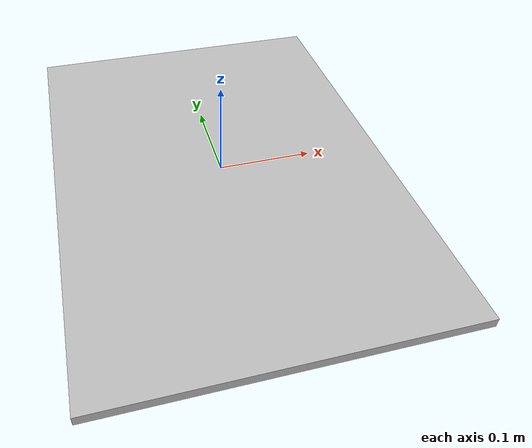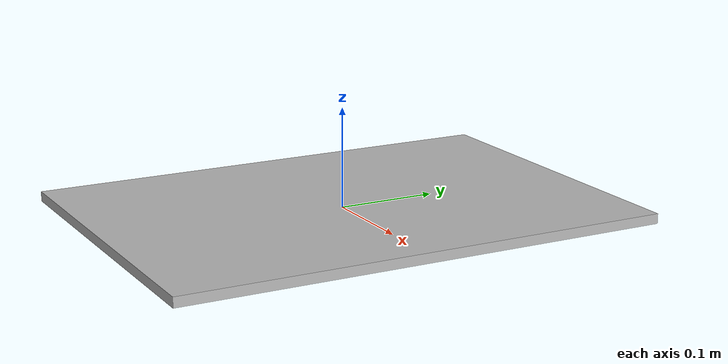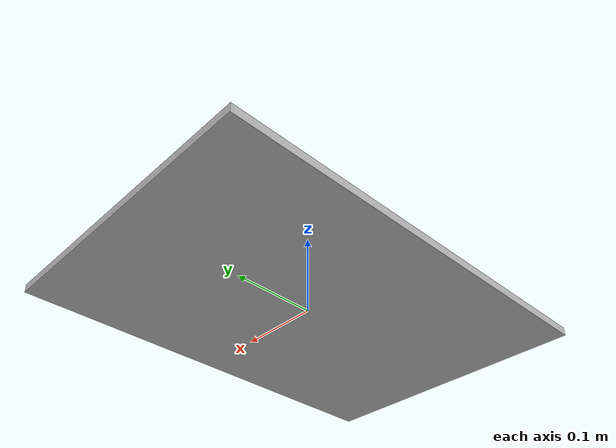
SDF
<?xml version="1.0"?>
<sdf version="1.6">
  <model name="MakeMake">
    <static>true</static>
    <link name="robot_link">
      <!-- Collision definition -->
      <collision name="body_collision">
        <geometry>
          <box>
            <size>0.35 0.5 0.01</size> <!-- Width, Height, Thin Depth -->
          </box>
        </geometry>
      </collision>

      <!-- Visual appearance -->
      <visual name="body_visual">
        <geometry>
          <box>
            <size>0.35 0.5 0.01</size> <!-- Width, Height, Thin Depth -->
          </box>
        </geometry>
        <material>
          <script>
           <uri>model://MakeMake/materials/scripts/</uri>
           <uri>model://MakeMake/materials/textures/</uri>
           <name>MakeMake</name>
          </script>
        </material>
      </visual>
    </link>
  </model>
</sdf>
